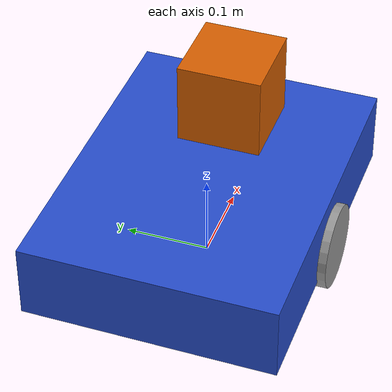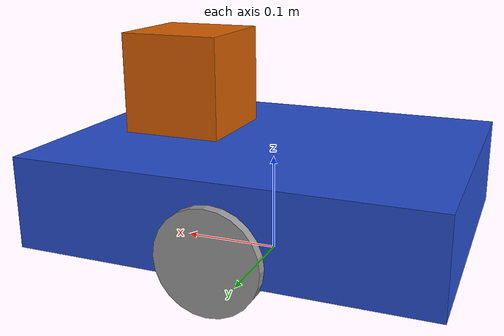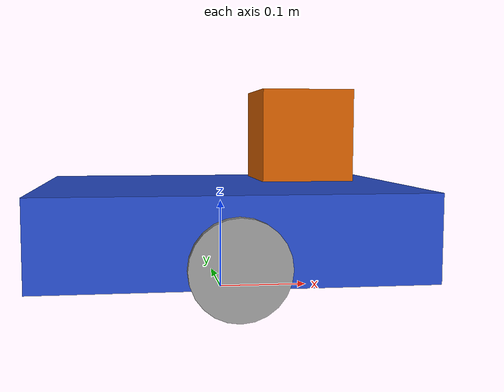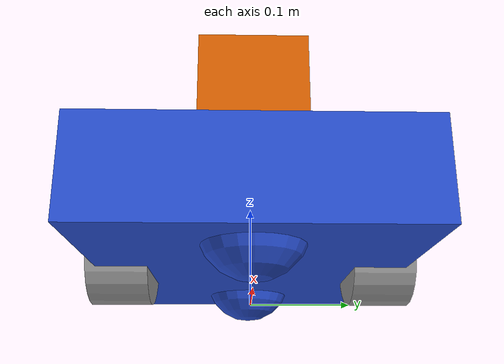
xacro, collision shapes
<?xml version='1.0'?>

<robot name="my_robot" xmlns:xacro="http://www.ros.org/wiki/xacro">

  <xacro:include filename="$(find my_robot)/urdf/my_robot.gazebo" />

  <link name="robot_footprint"></link>

  <joint name="robot_footprint_joint" type="fixed">
    <origin xyz="0 0 0" rpy="0 0 0" />
    <parent link="robot_footprint"/>
    <child link="chassis" />
  </joint>

  <link name='chassis'>

    <inertial>
      <mass value="10.0"/>
      <origin xyz="0 0 0.075" rpy=" 0 0 0"/>
      <inertia
          ixx="0.166667" ixy="0" ixz="0"
          iyy="0.166667" iyz="0"
          izz="0.166667"
      />
    </inertial>

    <collision name='chassis_collision'>
      <origin xyz="0 0 0.075" rpy=" 0 0 0"/>
      <geometry>
        <box size="0.40 0.30 0.09"/>
      </geometry>
    </collision>

    <visual name='chassis_visual'>
      <origin xyz="0 0 0.075" rpy=" 0 0 0"/>
      <geometry>
        <mesh filename="package://my_robot/meshes/MY_CHASIS.dae"/>
      </geometry>
    </visual>

    <collision name='back_caster_wheel_collision'>
      <origin xyz="-0.13 0 0.05" rpy=" 0 0 0"/>
      <geometry>
        <sphere radius="0.05"/>
      </geometry>
    </collision>

    <visual name='back_caster_wheel_visual'>
      <origin xyz="-0.13 0 0.05" rpy=" 0 0 0"/>
      <geometry>
        <sphere radius="0.05"/>
      </geometry>
    </visual>

    <collision name='front_caster_wheel_collision'>
      <origin xyz="0.13 0 0.05" rpy=" 0 0 0"/>
      <geometry>
        <sphere radius="0.05"/>
      </geometry>
    </collision>

    <visual name='front_caster_wheel_visual'>
      <origin xyz="0.13 0 0.05" rpy=" 0 0 0"/>
      <geometry>
        <sphere radius="0.05"/>
      </geometry>
    </visual>

  </link>

  <link name='left_wheel'>

    <inertial>
      <mass value="5.0"/>
      <origin xyz="0.0 0 0" rpy=" 0 0 0"/>
      <inertia
          ixx="0.166667" ixy="0" ixz="0"
          iyy="0.166667" iyz="0"
          izz="0.166667"
      />
    </inertial>

    <collision name='left_wheel_collision'>
      <origin xyz="0 0 0" rpy="0 1.5707 1.5707"/>
      <geometry>
        <cylinder radius="0.05" length="0.060"/>
      </geometry>
    </collision>

    <visual name='left_wheel_visual'>
      <origin xyz="0 0 0" rpy=" 0 0 0"/>
      <geometry>
        <mesh filename="package://my_robot/meshes/MY_LEFT_WHEEL.dae"/>
      </geometry>
    </visual>
  </link>

  <link name='right_wheel'>

    <inertial>
      <mass value="5.0"/>
      <origin xyz="0.0 0 0" rpy=" 0 0 0"/>
      <inertia
          ixx="0.166667" ixy="0" ixz="0"
          iyy="0.166667" iyz="0"
          izz="0.166667"
      />
    </inertial>

    <collision name='right_wheel_collision'>
      <origin xyz="0 0 0" rpy="0 1.5707 1.5707"/>
      <geometry>
        <cylinder radius="0.05" length="0.060"/>
      </geometry>
    </collision>

    <visual name='right_wheel_visual'>
      <origin xyz="0 0 0" rpy=" 0 0 0"/>
      <geometry>
        <mesh filename="package://my_robot/meshes/MY_RIGHT_WHEEL.dae"/>
      </geometry>
    </visual>
  </link>

  <link name='camera'>

    <inertial>
      <mass value="0.1"/>
      <origin xyz="0 0 0" rpy="0 0 0"/>
      <inertia
          ixx="1e-6" ixy="0" ixz="0"
          iyy="1e-6" iyz="0"
          izz="1e-6"
      />
    </inertial>

    <collision name='camera_collision'>
      <origin xyz="0 0 0" rpy="0 0 0"/>
      <geometry>
        <box size="0.05 0.05 0.05"/>
      </geometry>
    </collision>

    <visual name='camera_visual'>
      <origin xyz="0 0 0" rpy="0 0 0"/>
      <geometry>
        <box size="0.05 0.05 0.05"/>
      </geometry>
    </visual>

  </link>

  <link name='hokuyo'>

    <inertial>
      <mass value="1e-5"/>
      <origin xyz="0.0 0 0" rpy="0 0 0"/>
      <inertia
          ixx="1e-6" ixy="0" ixz="0"
          iyy="1e-6" iyz="0"
          izz="1e-6"
      />
    </inertial>

    <collision name='hokuyo_collision'>
      <origin xyz="0 0 0" rpy="0 0 0"/>
      <geometry>
        <box size="0.1 0.1 0.1"/>
      </geometry>
    </collision>

    <visual name='hokuyo_visual'>
      <origin xyz="0 0 0" rpy="0 0 0"/>
      <geometry>
        <mesh filename="package://my_robot/meshes/hokuyo.dae"/>
      </geometry>
    </visual>

  </link>

  <link name="camera_link_optical">
  </link>

  <joint type="continuous" name="left_wheel_hinge">
    <origin xyz="0 0.13 0.05" rpy="0 0 0"/>
    <child link="left_wheel"/>
    <parent link="chassis"/>
    <axis xyz="0 1 0" rpy="0 0 0"/>
    <limit effort="10000" velocity="1000"/>
    <dynamics damping="1.0" friction="1.0"/>
  </joint>

  <joint type="continuous" name="right_wheel_hinge">
    <origin xyz="0 -0.13 0.05" rpy="0 0 0"/>
    <child link="right_wheel"/>
    <parent link="chassis"/>
    <axis xyz="0 1 0" rpy="0 0 0"/>
    <limit effort="10000" velocity="1000"/>
    <dynamics damping="1.0" friction="1.0"/>
  </joint>

  <joint type="fixed" name="camera_joint">
    <origin xyz="0.165 0 0.08" rpy="0 0 0"/>
    <child link="camera"/>
    <parent link="chassis"/>
    <axis xyz="0 1 0" rpy="0 0 0"/>
  </joint>

  <joint type="fixed" name="hokuyo_joint">
    <origin xyz="0.09 0 0.175" rpy="0 0 0"/>
    <child link="hokuyo"/>
    <parent link="chassis"/>
    <axis xyz="0 1 0" rpy="0 0 0"/>
  </joint>

  <joint name="camera_optical_joint" type="fixed">
    <origin xyz="0 0 0" rpy="-1.5707 0 -1.5707"/>
    <parent link="camera"/>
    <child link="camera_link_optical"/>
  </joint>

  <gazebo reference="left_wheel">
    <material>Gazebo/Grey</material>
  </gazebo>

  <gazebo reference="right_wheel">
    <material>Gazebo/Grey</material>
  </gazebo>

  <gazebo reference="chassis">
    <material>Gazebo/Blue</material>
  </gazebo>

  <gazebo reference="camera">
    <material>Gazebo/Green</material>
  </gazebo>

</robot>
